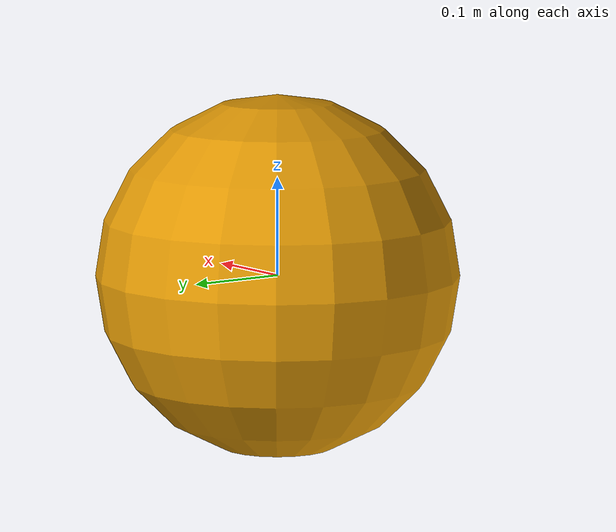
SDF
<?xml version="1.0"?>
<sdf version="1.9">
  <model name="roboboat_polyform_a2_yellow">
    <link name="link">
      <inertial>
        <mass>1.9958</mass>
        <inertia>
          <ixx>0.0270725</ixx>
          <ixy>0</ixy>
          <ixz>0</ixz>
          <iyy>0.0270725</iyy>
          <iyz>0</iyz>
          <izz>0.0270725</izz>
        </inertia>
      </inertial>
      <collision name="collision">
        <geometry>
          <sphere><radius>0.1841</radius></sphere>
        </geometry>
      </collision>
      <visual name="visual">
        <geometry>
          <sphere><radius>0.1841</radius></sphere>
        </geometry>
        <material>
          <ambient>0.8794 0.5971 0.0185 1</ambient>
          <diffuse>0.8794 0.5971 0.0185 1</diffuse>
          <specular>0.1 0.1 0.1 1</specular>
        </material>
      </visual>
    </link>
    <joint name="mooring" type="prismatic">
      <parent>world</parent>
      <child>link</child>
      <axis>
        <xyz>0 0 1</xyz>
      </axis>
    </joint>
    <plugin name="vrx::PolyhedraBuoyancyDrag" filename="libPolyhedraBuoyancyDrag.so">
      <linear_drag>54.375</linear_drag>
      <angular_drag>2</angular_drag>
      <buoyancy name="sphere">
        <link_name>link</link_name>
        <geometry>
          <sphere><radius>0.1841</radius></sphere>
        </geometry>
      </buoyancy>
      <wavefield>
        <topic>/vrx/wavefield/parameters</topic>
      </wavefield>
    </plugin>
    <plugin filename="gz-sim-label-system" name="gz::sim::systems::Label">
      <label>33</label>
    </plugin>
  </model>
</sdf>
